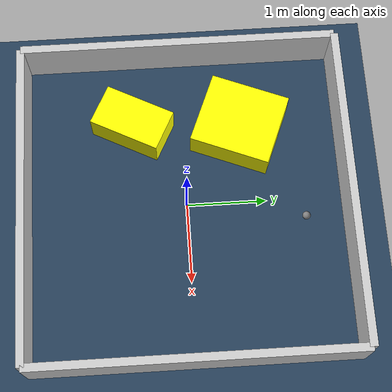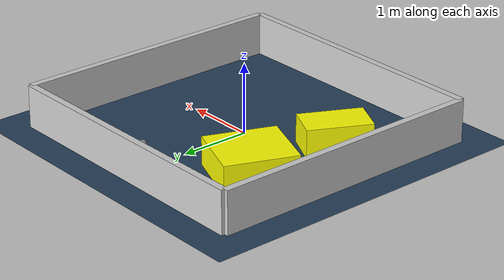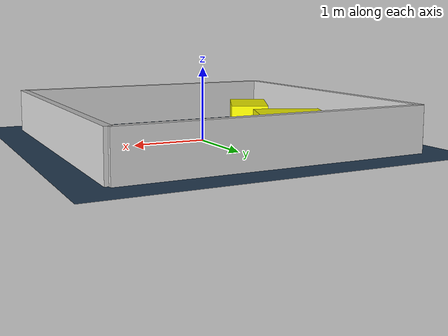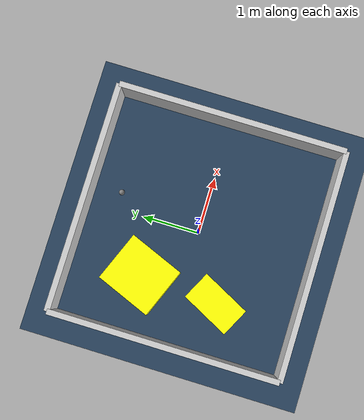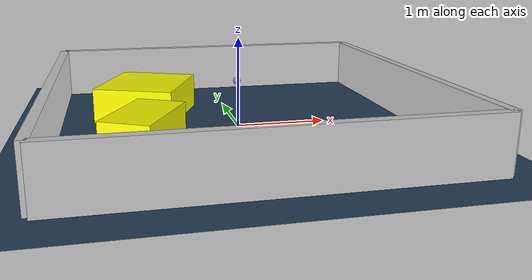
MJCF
<?xml version="1.0" ?>
<mujoco model="generated_environment">
  <option timestep="0.01" integrator="RK4" cone="elliptic"/>
  <default>
    <geom density="1"/>
  </default>
  <asset>
    <texture builtin="gradient" height="3072" rgb1="0.3 0.5 0.7" rgb2="0 0 0" type="skybox" width="512"/>
    <texture builtin="checker" height="300" mark="edge" markrgb="0.8 0.8 0.8" name="groundplane" rgb1="0.2 0.3 0.4" rgb2="0.1 0.2 0.3" type="2d" width="300"/>
    <material name="groundplane" reflectance="0.2" texrepeat="5 5" texture="groundplane" texuniform="true"/>
    <material name="robot" rgba="0.0 1.0 0.0 1"/>
  </asset>
  <worldbody>
    <light dir="0 0 -1" directional="true" pos="0 0 1.5"/>
    <geom condim="4" friction="1.0 0.005 0.001" material="groundplane" name="floor" size="0 0 0.05" type="plane"/>
    <body name="walls">
      <geom name="wall_1" condim="4" pos="-2.0 0.0 0.3" rgba="0.800000011920929 0.800000011920929 0.800000011920929 1.0" size="0.05 2.0 0.3" type="box"/>
      <geom name="wall_2" condim="4" pos="2.0 0.0 0.3" rgba="0.800000011920929 0.800000011920929 0.800000011920929 1.0" size="0.05 2.0 0.3" type="box"/>
      <geom name="wall_3" condim="4" pos="0.0 -2.0 0.3" rgba="0.800000011920929 0.800000011920929 0.800000011920929 1.0" size="2.0 0.05 0.3" type="box"/>
      <geom name="wall_4" condim="4" pos="0.0 2.0 0.3" rgba="0.800000011920929 0.800000011920929 0.800000011920929 1.0" size="2.0 0.05 0.3" type="box"/>
    </body>
    <body name="robot">
      <joint name="joint_x" type="slide" pos="0 0 0" axis="1 0 0"/>
      <joint name="joint_y" type="slide" pos="0 0 0" axis="0 1 0"/>
      <geom name="robot" type="sphere" pos="0.28341076763291984 1.4603842114768995 0.2" size="0.05" mass="5." friction="1.0 0.005 0.0001" condim="4"/>
      <site name="sensor_ball"/>
    </body>
    <body name="obstacle_1_movable">
      <geom name="obstacle_1_movable" condim="4" pos="-0.9817341233517823 0.7269188144956313 0.2" euler="0 0 68.05248206006493" friction="1.0 0.005 0.001" rgba="1 1 0 1" size="0.5074737760510354 0.45937507519928916 0.2" type="box" mass="0.1"/>
      <joint type="free"/>
    </body>
    <body name="obstacle_2_movable">
      <geom name="obstacle_2_movable" condim="4" pos="-1.079140934529052 -0.6303947320070951 0.2" euler="0 0 62.953566588177885" friction="1.0 0.005 0.001" rgba="1 1 0 1" size="0.45468882773735114 0.266323694769096 0.2" type="box" mass="0.1"/>
      <joint type="free"/>
    </body>
  </worldbody>
  <actuator>
    <motor name="actuator_x" joint="joint_x" gear="1" ctrlrange="-1 1"/>
    <motor name="actuator_y" joint="joint_y" gear="1" ctrlrange="-1 1"/>
  </actuator>
</mujoco>
